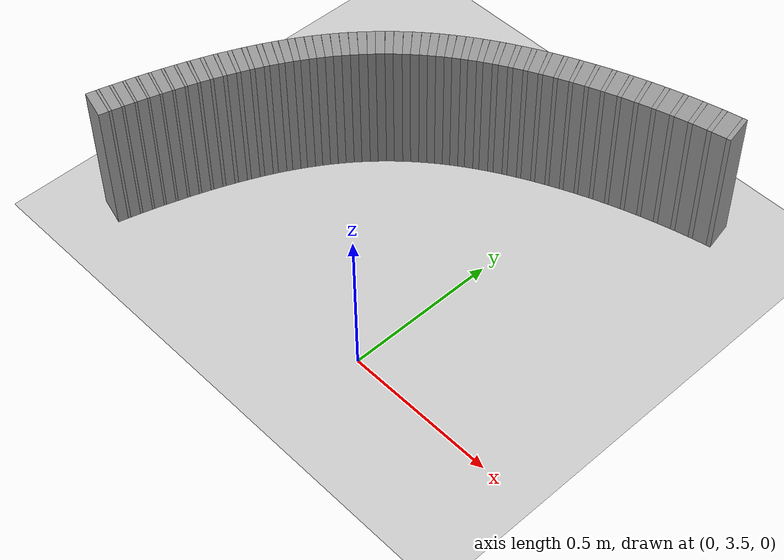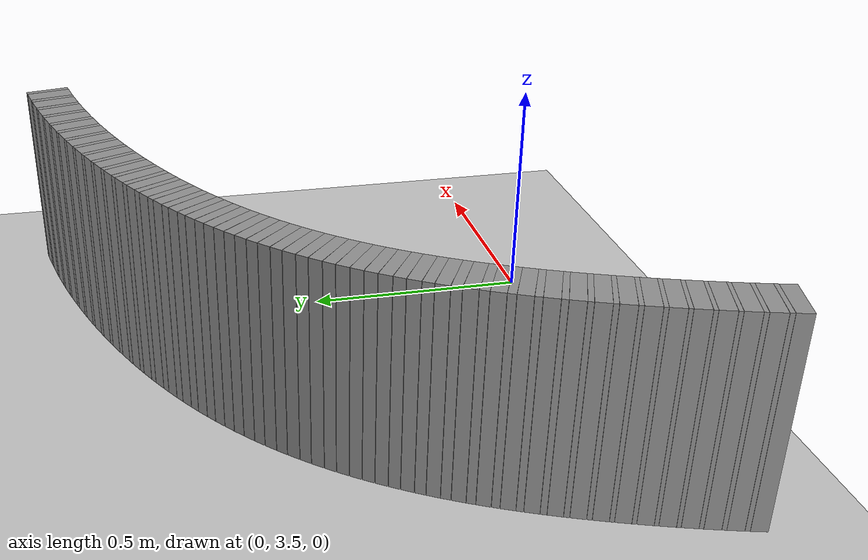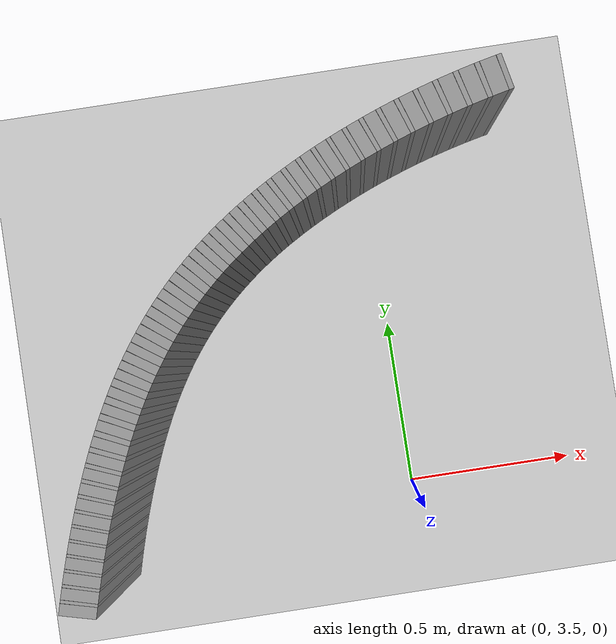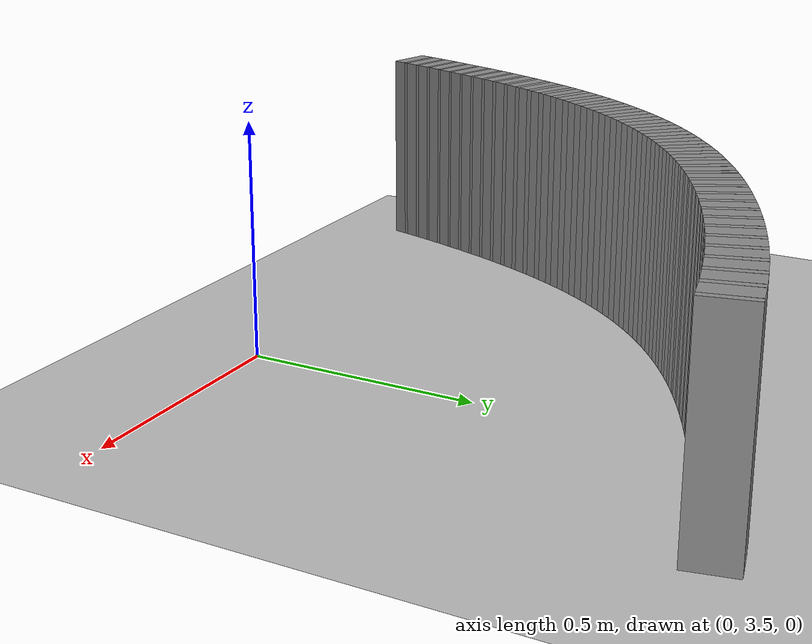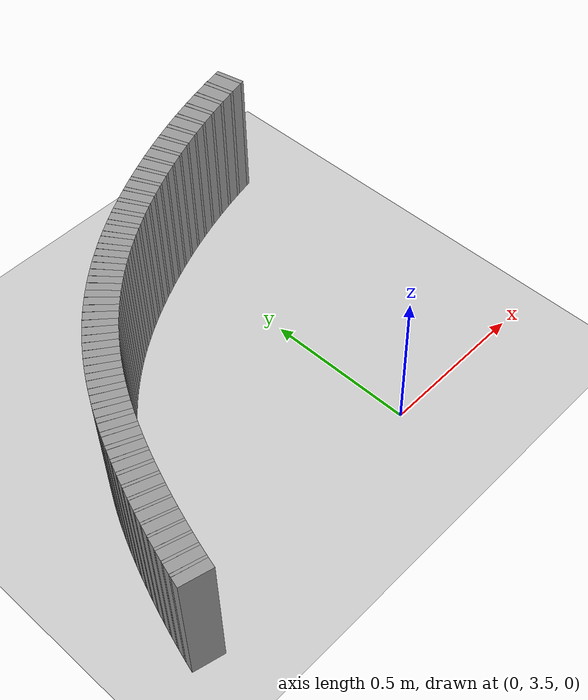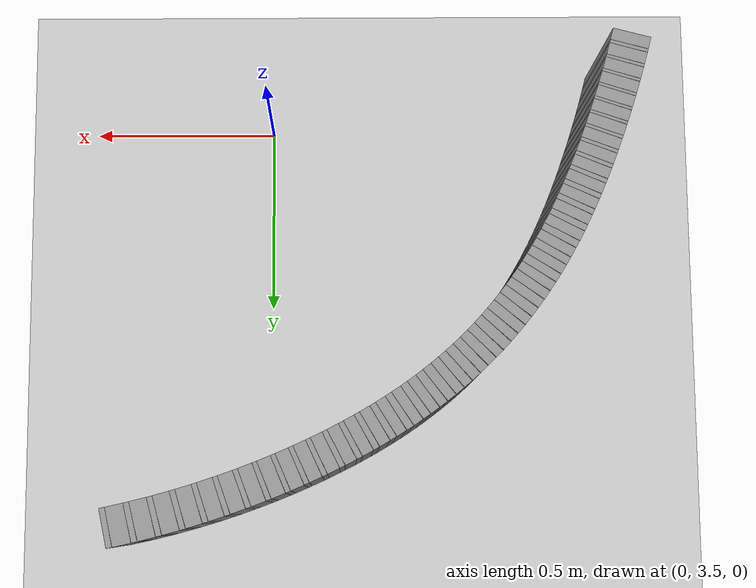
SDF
<sdf version="1.6">
 <world name="default">
  <include><uri>model://ground_plane</uri></include>
  <include><uri>model://sun</uri></include>
  <model name="wall_1367_inward">
   <static>true</static>
   <link name="link">
    <collision name="collision">
     <geometry><box><size>0.014849127280319592 0.1 0.45</size></box></geometry>
    </collision>
    <visual name="visual">
     <geometry><box><size>0.014849127280319592 0.1 0.45</size></box></geometry>
     <material>
      <script><uri>file://media/materials/scripts/gazebo.material</uri><name>Gazebo/Gray</name></script>
     </material>
    </visual>
   </link>
   <pose>0.392468983889634 4.601154664586623 0.225 0 0 -2.938756804813133</pose>
  </model>
  <model name="wall_1368_inward">
   <static>true</static>
   <link name="link">
    <collision name="collision">
     <geometry><box><size>0.04696626317127986 0.1 0.45</size></box></geometry>
    </collision>
    <visual name="visual">
     <geometry><box><size>0.04696626317127986 0.1 0.45</size></box></geometry>
     <material>
      <script><uri>file://media/materials/scripts/gazebo.material</uri><name>Gazebo/Gray</name></script>
     </material>
    </visual>
   </link>
   <pose>0.3622552190268384 4.5946441086404874 0.225 0 0 -2.926382216260908</pose>
  </model>
  <model name="wall_1369_inward">
   <static>true</static>
   <link name="link">
    <collision name="collision">
     <geometry><box><size>0.015055841337964485 0.1 0.45</size></box></geometry>
    </collision>
    <visual name="visual">
     <geometry><box><size>0.015055841337964485 0.1 0.45</size></box></geometry>
     <material>
      <script><uri>file://media/materials/scripts/gazebo.material</uri><name>Gazebo/Gray</name></script>
     </material>
    </visual>
   </link>
   <pose>0.3319802947623629 4.587929460932624 0.225 0 0 -2.9138353526194005</pose>
  </model>
  <model name="wall_1370_inward">
   <static>true</static>
   <link name="link">
    <collision name="collision">
     <geometry><box><size>0.04544403036982154 0.1 0.45</size></box></geometry>
    </collision>
    <visual name="visual">
     <geometry><box><size>0.04544403036982154 0.1 0.45</size></box></geometry>
     <material>
      <script><uri>file://media/materials/scripts/gazebo.material</uri><name>Gazebo/Gray</name></script>
     </material>
    </visual>
   </link>
   <pose>0.30257766853115414 4.580821911216917 0.225 0 0 -2.901288488977895</pose>
  </model>
  <model name="wall_1371_inward">
   <static>true</static>
   <link name="link">
    <collision name="collision">
     <geometry><box><size>0.01501787350965497 0.1 0.45</size></box></geometry>
    </collision>
    <visual name="visual">
     <geometry><box><size>0.01501787350965497 0.1 0.45</size></box></geometry>
     <material>
      <script><uri>file://media/materials/scripts/gazebo.material</uri><name>Gazebo/Gray</name></script>
     </material>
    </visual>
   </link>
   <pose>0.27323832065764364 4.573535869916348 0.225 0 0 -2.8887732676776032</pose>
  </model>
  <model name="wall_1372_inward">
   <static>true</static>
   <link name="link">
    <collision name="collision">
     <geometry><box><size>0.04398114981431672 0.1 0.45</size></box></geometry>
    </collision>
    <visual name="visual">
     <geometry><box><size>0.04398114981431672 0.1 0.45</size></box></geometry>
     <material>
      <script><uri>file://media/materials/scripts/gazebo.material</uri><name>Gazebo/Gray</name></script>
     </material>
    </visual>
   </link>
   <pose>0.2447470745964131 4.565890987790002 0.225 0 0 -2.8762580463773526</pose>
  </model>
  <model name="wall_1373_inward">
   <static>true</static>
   <link name="link">
    <collision name="collision">
     <geometry><box><size>0.0147920358748054 0.1 0.45</size></box></geometry>
    </collision>
    <visual name="visual">
     <geometry><box><size>0.0147920358748054 0.1 0.45</size></box></geometry>
     <material>
      <script><uri>file://media/materials/scripts/gazebo.material</uri><name>Gazebo/Gray</name></script>
     </material>
    </visual>
   </link>
   <pose>0.2164133207142983 4.5580970468177 0.225 0 0 -2.863931037625328</pose>
  </model>
  <model name="wall_1374_inward">
   <static>true</static>
   <link name="link">
    <collision name="collision">
     <geometry><box><size>0.04256624670841422 0.1 0.45</size></box></geometry>
    </collision>
    <visual name="visual">
     <geometry><box><size>0.04256624670841422 0.1 0.45</size></box></geometry>
     <material>
      <script><uri>file://media/materials/scripts/gazebo.material</uri><name>Gazebo/Gray</name></script>
     </material>
    </visual>
   </link>
   <pose>0.1889060855609165 4.549984017763814 0.225 0 0 -2.8516040288732776</pose>
  </model>
  <model name="wall_1375_inward">
   <static>true</static>
   <link name="link">
    <collision name="collision">
     <geometry><box><size>0.014433884393890511 0.1 0.45</size></box></geometry>
    </collision>
    <visual name="visual">
     <geometry><box><size>0.014433884393890511 0.1 0.45</size></box></geometry>
     <material>
      <script><uri>file://media/materials/scripts/gazebo.material</uri><name>Gazebo/Gray</name></script>
     </material>
    </visual>
   </link>
   <pose>0.16162130161494231 4.541751637903971 0.225 0 0 -2.8395755018216664</pose>
  </model>
  <model name="wall_1376_inward">
   <static>true</static>
   <link name="link">
    <collision name="collision">
     <geometry><box><size>0.04118636341307001 0.1 0.45</size></box></geometry>
    </collision>
    <visual name="visual">
     <geometry><box><size>0.04118636341307001 0.1 0.45</size></box></geometry>
     <material>
      <script><uri>file://media/materials/scripts/gazebo.material</uri><name>Gazebo/Gray</name></script>
     </material>
    </visual>
   </link>
   <pose>0.13514500715197592 4.5332435640813245 0.225 0 0 -2.827546974769998</pose>
  </model>
  <model name="wall_1377_inward">
   <static>true</static>
   <link name="link">
    <collision name="collision">
     <geometry><box><size>0.014020607673875784 0.1 0.45</size></box></geometry>
    </collision>
    <visual name="visual">
     <geometry><box><size>0.014020607673875784 0.1 0.45</size></box></geometry>
     <material>
      <script><uri>file://media/materials/scripts/gazebo.material</uri><name>Gazebo/Gray</name></script>
     </material>
    </visual>
   </link>
   <pose>0.10891732063338422 4.524638846429866 0.225 0 0 -2.815862869194462</pose>
  </model>
  <model name="wall_1378_inward">
   <static>true</static>
   <link name="link">
    <collision name="collision">
     <geometry><box><size>0.039829451731680746 0.1 0.45</size></box></geometry>
    </collision>
    <visual name="visual">
     <geometry><box><size>0.039829451731680746 0.1 0.45</size></box></geometry>
     <material>
      <script><uri>file://media/materials/scripts/gazebo.material</uri><name>Gazebo/Gray</name></script>
     </material>
    </visual>
   </link>
   <pose>0.08348382340160487 4.515802818805122 0.225 0 0 -2.804178763619012</pose>
  </model>
  <model name="wall_1379_inward">
   <static>true</static>
   <link name="link">
    <collision name="collision">
     <geometry><box><size>0.013619578464731165 0.1 0.45</size></box></geometry>
    </collision>
    <visual name="visual">
     <geometry><box><size>0.013619578464731165 0.1 0.45</size></box></geometry>
     <material>
      <script><uri>file://media/materials/scripts/gazebo.material</uri><name>Gazebo/Gray</name></script>
     </material>
    </visual>
   </link>
   <pose>0.058292198396370135 4.506882938364542 0.225 0 0 -2.7928288712176603</pose>
  </model>
  <model name="wall_1380_inward">
   <static>true</static>
   <link name="link">
    <collision name="collision">
     <geometry><box><size>0.03848461791273019 0.1 0.45</size></box></geometry>
    </collision>
    <visual name="visual">
     <geometry><box><size>0.03848461791273019 0.1 0.45</size></box></geometry>
     <material>
      <script><uri>file://media/materials/scripts/gazebo.material</uri><name>Gazebo/Gray</name></script>
     </material>
    </visual>
   </link>
   <pose>0.03388434129165502 4.49777516960933 0.225 0 0 -2.7814789788163354</pose>
  </model>
  <model name="wall_1381_inward">
   <static>true</static>
   <link name="link">
    <collision name="collision">
     <geometry><box><size>0.013309610051335541 0.1 0.45</size></box></geometry>
    </collision>
    <visual name="visual">
     <geometry><box><size>0.013309610051335541 0.1 0.45</size></box></geometry>
     <material>
      <script><uri>file://media/materials/scripts/gazebo.material</uri><name>Gazebo/Gray</name></script>
     </material>
    </visual>
   </link>
   <pose>0.00967474432398821 4.488580596543073 0.225 0 0 -2.770387409688741</pose>
  </model>
  <model name="wall_1382_inward">
   <static>true</static>
   <link name="link">
    <collision name="collision">
     <geometry><box><size>0.03714724470620901 0.1 0.45</size></box></geometry>
    </collision>
    <visual name="visual">
     <geometry><box><size>0.03714724470620901 0.1 0.45</size></box></geometry>
     <material>
      <script><uri>file://media/materials/scripts/gazebo.material</uri><name>Gazebo/Gray</name></script>
     </material>
    </visual>
   </link>
   <pose>-0.01375960471300372 4.4792377047385346 0.225 0 0 -2.759295840561209</pose>
  </model>
  <model name="wall_1383_inward">
   <static>true</static>
   <link name="link">
    <collision name="collision">
     <geometry><box><size>0.01317840313160197 0.1 0.45</size></box></geometry>
    </collision>
    <visual name="visual">
     <geometry><box><size>0.01317840313160197 0.1 0.45</size></box></geometry>
     <material>
      <script><uri>file://media/materials/scripts/gazebo.material</uri><name>Gazebo/Gray</name></script>
     </material>
    </visual>
   </link>
   <pose>-0.03707856698347316 4.469783660865735 0.225 0 0 -2.7483136171932765</pose>
  </model>
  <model name="wall_1384_inward">
   <static>true</static>
   <link name="link">
    <collision name="collision">
     <geometry><box><size>0.035815632536632634 0.1 0.45</size></box></geometry>
    </collision>
    <visual name="visual">
     <geometry><box><size>0.035815632536632634 0.1 0.45</size></box></geometry>
     <material>
      <script><uri>file://media/materials/scripts/gazebo.material</uri><name>Gazebo/Gray</name></script>
     </material>
    </visual>
   </link>
   <pose>-0.059629056952012705 4.460214697838661 0.225 0 0 -2.7373313938253667</pose>
  </model>
  <model name="wall_1385_inward">
   <static>true</static>
   <link name="link">
    <collision name="collision">
     <geometry><box><size>0.013257525321962891 0.1 0.45</size></box></geometry>
    </collision>
    <visual name="visual">
     <geometry><box><size>0.013257525321962891 0.1 0.45</size></box></geometry>
     <material>
      <script><uri>file://media/materials/scripts/gazebo.material</uri><name>Gazebo/Gray</name></script>
     </material>
    </visual>
   </link>
   <pose>-0.08215864351095478 4.450496315996821 0.225 0 0 -2.726283231298527</pose>
  </model>
  <model name="wall_1386_inward">
   <static>true</static>
   <link name="link">
    <collision name="collision">
     <geometry><box><size>0.03449523122068988 0.1 0.45</size></box></geometry>
    </collision>
    <visual name="visual">
     <geometry><box><size>0.03449523122068988 0.1 0.45</size></box></geometry>
     <material>
      <script><uri>file://media/materials/scripts/gazebo.material</uri><name>Gazebo/Gray</name></script>
     </material>
    </visual>
   </link>
   <pose>-0.10392748200099083 4.440688912930112 0.225 0 0 -2.715235068771608</pose>
  </model>
  <model name="wall_1387_inward">
   <static>true</static>
   <link name="link">
    <collision name="collision">
     <geometry><box><size>0.013624634827327205 0.1 0.45</size></box></geometry>
    </collision>
    <visual name="visual">
     <geometry><box><size>0.013624634827327205 0.1 0.45</size></box></geometry>
     <material>
      <script><uri>file://media/materials/scripts/gazebo.material</uri><name>Gazebo/Gray</name></script>
     </material>
    </visual>
   </link>
   <pose>-0.12580113806757026 4.4306685137139645 0.225 0 0 -2.703880962463254</pose>
  </model>
  <model name="wall_1388_inward">
   <static>true</static>
   <link name="link">
    <collision name="collision">
     <geometry><box><size>0.03319510672204386 0.1 0.45</size></box></geometry>
    </collision>
    <visual name="visual">
     <geometry><box><size>0.03319510672204386 0.1 0.45</size></box></geometry>
     <material>
      <script><uri>file://media/materials/scripts/gazebo.material</uri><name>Gazebo/Gray</name></script>
     </material>
    </visual>
   </link>
   <pose>-0.14692317392743365 4.420575591700965 0.225 0 0 -2.6925268561549296</pose>
  </model>
  <model name="wall_1389_inward">
   <static>true</static>
   <link name="link">
    <collision name="collision">
     <geometry><box><size>0.014297633485500316 0.1 0.45</size></box></geometry>
    </collision>
    <visual name="visual">
     <geometry><box><size>0.014297633485500316 0.1 0.45</size></box></geometry>
     <material>
      <script><uri>file://media/materials/scripts/gazebo.material</uri><name>Gazebo/Gray</name></script>
     </material>
    </visual>
   </link>
   <pose>-0.16827772991348852 4.410190208357477 0.225 0 0 -2.6806118796641</pose>
  </model>
  <model name="wall_1390_inward">
   <static>true</static>
   <link name="link">
    <collision name="collision">
     <geometry><box><size>0.031930395407160694 0.1 0.45</size></box></geometry>
    </collision>
    <visual name="visual">
     <geometry><box><size>0.031930395407160694 0.1 0.45</size></box></geometry>
     <material>
      <script><uri>file://media/materials/scripts/gazebo.material</uri><name>Gazebo/Gray</name></script>
     </material>
    </visual>
   </link>
   <pose>-0.18889339609256117 4.399738616658993 0.225 0 0 -2.6686969031732617</pose>
  </model>
  <model name="wall_1391_inward">
   <static>true</static>
   <link name="link">
    <collision name="collision">
     <geometry><box><size>0.015294783452719963 0.1 0.45</size></box></geometry>
    </collision>
    <visual name="visual">
     <geometry><box><size>0.015294783452719963 0.1 0.45</size></box></geometry>
     <material>
      <script><uri>file://media/materials/scripts/gazebo.material</uri><name>Gazebo/Gray</name></script>
     </material>
    </visual>
   </link>
   <pose>-0.2098696294230044 4.388897390714499 0.225 0 0 -2.655950905178627</pose>
  </model>
  <model name="wall_1392_inward">
   <static>true</static>
   <link name="link">
    <collision name="collision">
     <geometry><box><size>0.03071918702018818 0.1 0.45</size></box></geometry>
    </collision>
    <visual name="visual">
     <geometry><box><size>0.03071918702018818 0.1 0.45</size></box></geometry>
     <material>
      <script><uri>file://media/materials/scripts/gazebo.material</uri><name>Gazebo/Gray</name></script>
     </material>
    </visual>
   </link>
   <pose>-0.23012396208614228 4.377985732015707 0.225 0 0 -2.643204907184095</pose>
  </model>
  <model name="wall_1393_inward">
   <static>true</static>
   <link name="link">
    <collision name="collision">
     <geometry><box><size>0.016628277594501865 0.1 0.45</size></box></geometry>
    </collision>
    <visual name="visual">
     <geometry><box><size>0.016628277594501865 0.1 0.45</size></box></geometry>
     <material>
      <script><uri>file://media/materials/scripts/gazebo.material</uri><name>Gazebo/Gray</name></script>
     </material>
    </visual>
   </link>
   <pose>-0.25086211665623565 4.366568638483381 0.225 0 0 -2.629347565698137</pose>
  </model>
  <model name="wall_1394_inward">
   <static>true</static>
   <link name="link">
    <collision name="collision">
     <geometry><box><size>0.029579879459732138 0.1 0.45</size></box></geometry>
    </collision>
    <visual name="visual">
     <geometry><box><size>0.029579879459732138 0.1 0.45</size></box></geometry>
     <material>
      <script><uri>file://media/materials/scripts/gazebo.material</uri><name>Gazebo/Gray</name></script>
     </material>
    </visual>
   </link>
   <pose>-0.27089901400315813 4.355066570100257 0.225 0 0 -2.6154902242122255</pose>
  </model>
  <model name="wall_1395_inward">
   <static>true</static>
   <link name="link">
    <collision name="collision">
     <geometry><box><size>0.01824035968282119 0.1 0.45</size></box></geometry>
    </collision>
    <visual name="visual">
     <geometry><box><size>0.01824035968282119 0.1 0.45</size></box></geometry>
     <material>
      <script><uri>file://media/materials/scripts/gazebo.material</uri><name>Gazebo/Gray</name></script>
     </material>
    </visual>
   </link>
   <pose>-0.29150526248652797 4.342940351643824 0.225 0 0 -2.6002893390796804</pose>
  </model>
  <model name="wall_1396_inward">
   <static>true</static>
   <link name="link">
    <collision name="collision">
     <geometry><box><size>0.02853377288058711 0.1 0.45</size></box></geometry>
    </collision>
    <visual name="visual">
     <geometry><box><size>0.02853377288058711 0.1 0.45</size></box></geometry>
     <material>
      <script><uri>file://media/materials/scripts/gazebo.material</uri><name>Gazebo/Gray</name></script>
     </material>
    </visual>
   </link>
   <pose>-0.3114357130327825 4.330705077015381 0.225 0 0 -2.5850884539471903</pose>
  </model>
  <model name="wall_1397_inward">
   <static>true</static>
   <link name="link">
    <collision name="collision">
     <geometry><box><size>0.020056211708876726 0.1 0.45</size></box></geometry>
    </collision>
    <visual name="visual">
     <geometry><box><size>0.020056211708876726 0.1 0.45</size></box></geometry>
     <material>
      <script><uri>file://media/materials/scripts/gazebo.material</uri><name>Gazebo/Gray</name></script>
     </material>
    </visual>
   </link>
   <pose>-0.3319750356494042 4.317730374362628 0.225 0 0 -2.568374165962764</pose>
  </model>
  <model name="wall_1398_inward">
   <static>true</static>
   <link name="link">
    <collision name="collision">
     <geometry><box><size>0.02760075356349479 0.1 0.45</size></box></geometry>
    </collision>
    <visual name="visual">
     <geometry><box><size>0.02760075356349479 0.1 0.45</size></box></geometry>
     <material>
      <script><uri>file://media/materials/scripts/gazebo.material</uri><name>Gazebo/Gray</name></script>
     </material>
    </visual>
   </link>
   <pose>-0.35186805782230696 4.304614521650894 0.225 0 0 -2.5516598779782718</pose>
  </model>
  <model name="wall_1399_inward">
   <static>true</static>
   <link name="link">
    <collision name="collision">
     <geometry><box><size>0.02200440622180352 0.1 0.45</size></box></geometry>
    </collision>
    <visual name="visual">
     <geometry><box><size>0.02200440622180352 0.1 0.45</size></box></geometry>
     <material>
      <script><uri>file://media/materials/scripts/gazebo.material</uri><name>Gazebo/Gray</name></script>
     </material>
    </visual>
   </link>
   <pose>-0.3723646876385298 4.2906500998049095 0.225 0 0 -2.5333218450145503</pose>
  </model>
  <model name="wall_1400_inward">
   <static>true</static>
   <link name="link">
    <collision name="collision">
     <geometry><box><size>0.026799977084534143 0.1 0.45</size></box></geometry>
    </collision>
    <visual name="visual">
     <geometry><box><size>0.026799977084534143 0.1 0.45</size></box></geometry>
     <material>
      <script><uri>file://media/materials/scripts/gazebo.material</uri><name>Gazebo/Gray</name></script>
     </material>
    </visual>
   </link>
   <pose>-0.39224777553364143 4.276505129088914 0.225 0 0 -2.5149838120508257</pose>
  </model>
  <model name="wall_1401_inward">
   <static>true</static>
   <link name="link">
    <collision name="collision">
     <geometry><box><size>0.023881369716501896 0.1 0.45</size></box></geometry>
    </collision>
    <visual name="visual">
     <geometry><box><size>0.023881369716501896 0.1 0.45</size></box></geometry>
     <material>
      <script><uri>file://media/materials/scripts/gazebo.material</uri><name>Gazebo/Gray</name></script>
     </material>
    </visual>
   </link>
   <pose>-0.4126329826057964 4.2614542259972 0.225 0 0 -2.4950813567270544</pose>
  </model>
  <model name="wall_1402_inward">
   <static>true</static>
   <link name="link">
    <collision name="collision">
     <geometry><box><size>0.026146189037495444 0.1 0.45</size></box></geometry>
    </collision>
    <visual name="visual">
     <geometry><box><size>0.026146189037495444 0.1 0.45</size></box></geometry>
     <material>
      <script><uri>file://media/materials/scripts/gazebo.material</uri><name>Gazebo/Gray</name></script>
     </material>
    </visual>
   </link>
   <pose>-0.43243994369681293 4.2461796844325335 0.225 0 0 -2.475178901403248</pose>
  </model>
  <model name="wall_1403_inward">
   <static>true</static>
   <link name="link">
    <collision name="collision">
     <geometry><box><size>0.02556972416572605 0.1 0.45</size></box></geometry>
    </collision>
    <visual name="visual">
     <geometry><box><size>0.02556972416572605 0.1 0.45</size></box></geometry>
     <material>
      <script><uri>file://media/materials/scripts/gazebo.material</uri><name>Gazebo/Gray</name></script>
     </material>
    </visual>
   </link>
   <pose>-0.4525947412438159 4.229982704454207 0.225 0 0 -2.4538691851638395</pose>
  </model>
  <model name="wall_1404_inward">
   <static>true</static>
   <link name="link">
    <collision name="collision">
     <geometry><box><size>0.02565073848480738 0.1 0.45</size></box></geometry>
    </collision>
    <visual name="visual">
     <geometry><box><size>0.02565073848480738 0.1 0.45</size></box></geometry>
     <material>
      <script><uri>file://media/materials/scripts/gazebo.material</uri><name>Gazebo/Gray</name></script>
     </material>
    </visual>
   </link>
   <pose>-0.4722078652324741 4.213516531278239 0.225 0 0 -2.432559468924425</pose>
  </model>
  <model name="wall_1405_inward">
   <static>true</static>
   <link name="link">
    <collision name="collision">
     <geometry><box><size>0.0269062728329867 0.1 0.45</size></box></geometry>
    </collision>
    <visual name="visual">
     <geometry><box><size>0.0269062728329867 0.1 0.45</size></box></geometry>
     <material>
      <script><uri>file://media/materials/scripts/gazebo.material</uri><name>Gazebo/Gray</name></script>
     </material>
    </visual>
   </link>
   <pose>-0.491954065522339 4.196179845344712 0.225 0 0 -2.41013569573632</pose>
  </model>
  <model name="wall_1406_inward">
   <static>true</static>
   <link name="link">
    <collision name="collision">
     <geometry><box><size>0.02531991710122111 0.1 0.45</size></box></geometry>
    </collision>
    <visual name="visual">
     <geometry><box><size>0.02531991710122111 0.1 0.45</size></box></geometry>
     <material>
      <script><uri>file://media/materials/scripts/gazebo.material</uri><name>Gazebo/Gray</name></script>
     </material>
    </visual>
   </link>
   <pose>-0.5111955089395952 4.178528359621147 0.225 0 0 -2.3877119225481698</pose>
  </model>
  <model name="wall_1407_inward">
   <static>true</static>
   <link name="link">
    <collision name="collision">
     <geometry><box><size>0.02772704098543394 0.1 0.45</size></box></geometry>
    </collision>
    <visual name="visual">
     <geometry><box><size>0.02772704098543394 0.1 0.45</size></box></geometry>
     <material>
      <script><uri>file://media/materials/scripts/gazebo.material</uri><name>Gazebo/Gray</name></script>
     </material>
    </visual>
   </link>
   <pose>-0.5303101812540496 4.160142753075874 0.225 0 0 -2.3646039986018623</pose>
  </model>
  <model name="wall_1408_inward">
   <static>true</static>
   <link name="link">
    <collision name="collision">
     <geometry><box><size>0.02515378973367862 0.1 0.45</size></box></geometry>
    </collision>
    <visual name="visual">
     <geometry><box><size>0.02515378973367862 0.1 0.45</size></box></geometry>
     <material>
      <script><uri>file://media/materials/scripts/gazebo.material</uri><name>Gazebo/Gray</name></script>
     </material>
    </visual>
   </link>
   <pose>-0.5489567969740969 4.141399589345729 0.225 0 0 -2.341496074655522</pose>
  </model>
  <model name="wall_1409_inward">
   <static>true</static>
   <link name="link">
    <collision name="collision">
     <geometry><box><size>0.027944257810436218 0.1 0.45</size></box></geometry>
    </collision>
    <visual name="visual">
     <geometry><box><size>0.027944257810436218 0.1 0.45</size></box></geometry>
     <material>
      <script><uri>file://media/materials/scripts/gazebo.material</uri><name>Gazebo/Gray</name></script>
     </material>
    </visual>
   </link>
   <pose>-0.5672157749112414 4.122128754321615 0.225 0 0 -2.318207087969181</pose>
  </model>
  <model name="wall_1410_inward">
   <static>true</static>
   <link name="link">
    <collision name="collision">
     <geometry><box><size>0.02514727435788805 0.1 0.45</size></box></geometry>
    </collision>
    <visual name="visual">
     <geometry><box><size>0.02514727435788805 0.1 0.45</size></box></geometry>
     <material>
      <script><uri>file://media/materials/scripts/gazebo.material</uri><name>Gazebo/Gray</name></script>
     </material>
    </visual>
   </link>
   <pose>-0.5850429731442823 4.102462198460776 0.225 0 0 -2.2949181012828253</pose>
  </model>
  <model name="wall_1411_inward">
   <static>true</static>
   <link name="link">
    <collision name="collision">
     <geometry><box><size>0.02758879870359209 0.1 0.45</size></box></geometry>
    </collision>
    <visual name="visual">
     <geometry><box><size>0.02758879870359209 0.1 0.45</size></box></geometry>
     <material>
      <script><uri>file://media/materials/scripts/gazebo.material</uri><name>Gazebo/Gray</name></script>
     </material>
    </visual>
   </link>
   <pose>-0.6022712319044101 4.082503021120299 0.225 0 0 -2.271925409849231</pose>
  </model>
  <model name="wall_1412_inward">
   <static>true</static>
   <link name="link">
    <collision name="collision">
     <geometry><box><size>0.025286617313076503 0.1 0.45</size></box></geometry>
    </collision>
    <visual name="visual">
     <geometry><box><size>0.025286617313076503 0.1 0.45</size></box></geometry>
     <material>
      <script><uri>file://media/materials/scripts/gazebo.material</uri><name>Gazebo/Gray</name></script>
     </material>
    </visual>
   </link>
   <pose>-0.6191014239027752 4.062116632438233 0.225 0 0 -2.248932718415619</pose>
  </model>
  <model name="wall_1413_inward">
   <static>true</static>
   <link name="link">
    <collision name="collision">
     <geometry><box><size>0.02664323136642909 0.1 0.45</size></box></geometry>
    </collision>
    <visual name="visual">
     <geometry><box><size>0.02664323136642909 0.1 0.45</size></box></geometry>
     <material>
      <script><uri>file://media/materials/scripts/gazebo.material</uri><name>Gazebo/Gray</name></script>
     </material>
    </visual>
   </link>
   <pose>-0.6351579398440242 4.0417136289160025 0.225 0 0 -2.22672820103384</pose>
  </model>
  <model name="wall_1414_inward">
   <static>true</static>
   <link name="link">
    <collision name="collision">
     <geometry><box><size>0.025555321199773193 0.1 0.45</size></box></geometry>
    </collision>
    <visual name="visual">
     <geometry><box><size>0.025555321199773193 0.1 0.45</size></box></geometry>
     <material>
      <script><uri>file://media/materials/scripts/gazebo.material</uri><name>Gazebo/Gray</name></script>
     </material>
    </visual>
   </link>
   <pose>-0.6508490898264516 4.020859945470125 0.225 0 0 -2.204523683652068</pose>
  </model>
  <model name="wall_1415_inward">
   <static>true</static>
   <link name="link">
    <collision name="collision">
     <geometry><box><size>0.02524640448478993 0.1 0.45</size></box></geometry>
    </collision>
    <visual name="visual">
     <geometry><box><size>0.02524640448478993 0.1 0.45</size></box></geometry>
     <material>
      <script><uri>file://media/materials/scripts/gazebo.material</uri><name>Gazebo/Gray</name></script>
     </material>
    </visual>
   </link>
   <pose>-0.665674611372169 4.000236261443597 0.225 0 0 -2.1834834608963214</pose>
  </model>
  <model name="wall_1416_inward">
   <static>true</static>
   <link name="link">
    <collision name="collision">
     <geometry><box><size>0.02592999163623841 0.1 0.45</size></box></geometry>
    </collision>
    <visual name="visual">
     <geometry><box><size>0.02592999163623841 0.1 0.45</size></box></geometry>
     <material>
      <script><uri>file://media/materials/scripts/gazebo.material</uri><name>Gazebo/Gray</name></script>
     </material>
    </visual>
   </link>
   <pose>-0.6801647606485717 3.97914789958441 0.225 0 0 -2.1624432381405727</pose>
  </model>
  <model name="wall_1417_inward">
   <static>true</static>
   <link name="link">
    <collision name="collision">
     <geometry><box><size>0.023487234497805376 0.1 0.45</size></box></geometry>
    </collision>
    <visual name="visual">
     <geometry><box><size>0.023487234497805376 0.1 0.45</size></box></geometry>
     <material>
      <script><uri>file://media/materials/scripts/gazebo.material</uri><name>Gazebo/Gray</name></script>
     </material>
    </visual>
   </link>
   <pose>-0.6937534255470237 3.9585128465776203 0.225 0 0 -2.1428692928249458</pose>
  </model>
  <model name="wall_1418_inward">
   <static>true</static>
   <link name="link">
    <collision name="collision">
     <geometry><box><size>0.0263857362769666 0.1 0.45</size></box></geometry>
    </collision>
    <visual name="visual">
     <geometry><box><size>0.0263857362769666 0.1 0.45</size></box></geometry>
     <material>
      <script><uri>file://media/materials/scripts/gazebo.material</uri><name>Gazebo/Gray</name></script>
     </material>
    </visual>
   </link>
   <pose>-0.707034968711971 3.937409065968756 0.225 0 0 -2.123295347509318</pose>
  </model>
  <model name="wall_1419_inward">
   <static>true</static>
   <link name="link">
    <collision name="collision">
     <geometry><box><size>0.02153578666945619 0.1 0.45</size></box></geometry>
    </collision>
    <visual name="visual">
     <geometry><box><size>0.02153578666945619 0.1 0.45</size></box></geometry>
     <material>
      <script><uri>file://media/materials/scripts/gazebo.material</uri><name>Gazebo/Gray</name></script>
     </material>
    </visual>
   </link>
   <pose>-0.7194445573639663 3.9169133483138023 0.225 0 0 -2.105347895121513</pose>
  </model>
  <model name="wall_1420_inward">
   <static>true</static>
   <link name="link">
    <collision name="collision">
     <geometry><box><size>0.026895277802992536 0.1 0.45</size></box></geometry>
    </collision>
    <visual name="visual">
     <geometry><box><size>0.026895277802992536 0.1 0.45</size></box></geometry>
     <material>
      <script><uri>file://media/materials/scripts/gazebo.material</uri><name>Gazebo/Gray</name></script>
     </material>
    </visual>
   </link>
   <pose>-0.7315725126423858 3.895954864090519 0.225 0 0 -2.0874004427336983</pose>
  </model>
  <model name="wall_1421_inward">
   <static>true</static>
   <link name="link">
    <collision name="collision">
     <geometry><box><size>0.019477972124147834 0.1 0.45</size></box></geometry>
    </collision>
    <visual name="visual">
     <geometry><box><size>0.019477972124147834 0.1 0.45</size></box></geometry>
     <material>
      <script><uri>file://media/materials/scripts/gazebo.material</uri><name>Gazebo/Gray</name></script>
     </material>
    </visual>
   </link>
   <pose>-0.7428870041487745 3.8757170936682996 0.225 0 0 -2.0711680864640285</pose>
  </model>
  <model name="wall_1422_inward">
   <static>true</static>
   <link name="link">
    <collision name="collision">
     <geometry><box><size>0.027432757730184634 0.1 0.45</size></box></geometry>
    </collision>
    <visual name="visual">
     <geometry><box><size>0.027432757730184634 0.1 0.45</size></box></geometry>
     <material>
      <script><uri>file://media/materials/scripts/gazebo.material</uri><name>Gazebo/Gray</name></script>
     </material>
    </visual>
   </link>
   <pose>-0.7539435449870288 3.8550320301812286 0.225 0 0 -2.0549357301943547</pose>
  </model>
  <model name="wall_1423_inward">
   <static>true</static>
   <link name="link">
    <collision name="collision">
     <geometry><box><size>0.017427872782017725 0.1 0.45</size></box></geometry>
    </collision>
    <visual name="visual">
     <geometry><box><size>0.017427872782017725 0.1 0.45</size></box></geometry>
     <material>
      <script><uri>file://media/materials/scripts/gazebo.material</uri><name>Gazebo/Gray</name></script>
     </material>
    </visual>
   </link>
   <pose>-0.7642712262376928 3.835121409128119 0.225 0 0 -2.0404119922776864</pose>
  </model>
  <model name="wall_1424_inward">
   <static>true</static>
   <link name="link">
    <collision name="collision">
     <geometry><box><size>0.0279728174506665 0.1 0.45</size></box></geometry>
    </collision>
    <visual name="visual">
     <geometry><box><size>0.0279728174506665 0.1 0.45</size></box></geometry>
     <material>
      <script><uri>file://media/materials/scripts/gazebo.material</uri><name>Gazebo/Gray</name></script>
     </material>
    </visual>
   </link>
   <pose>-0.7743623167492312 3.814787942807758 0.225 0 0 -2.02588825436102</pose>
  </model>
  <model name="wall_1425_inward">
   <static>true</static>
   <link name="link">
    <collision name="collision">
     <geometry><box><size>0.015490441337026442 0.1 0.45</size></box></geometry>
    </collision>
    <visual name="visual">
     <geometry><box><size>0.015490441337026442 0.1 0.45</size></box></geometry>
     <material>
      <script><uri>file://media/materials/scripts/gazebo.material</uri><name>Gazebo/Gray</name></script>
     </material>
    </visual>
   </link>
   <pose>-0.7838242549167797 3.7952247786896125 0.225 0 0 -2.0129791947139783</pose>
  </model>
  <model name="wall_1426_inward">
   <static>true</static>
   <link name="link">
    <collision name="collision">
     <geometry><box><size>0.028496123092211063 0.1 0.45</size></box></geometry>
    </collision>
    <visual name="visual">
     <geometry><box><size>0.028496123092211063 0.1 0.45</size></box></geometry>
     <material>
      <script><uri>file://media/materials/scripts/gazebo.material</uri><name>Gazebo/Gray</name></script>
     </material>
    </visual>
   </link>
   <pose>-0.793068733018476 3.7752691855493716 0.225 0 0 -2.0000701350669448</pose>
  </model>
  <model name="wall_1427_inward">
   <static>true</static>
   <link name="link">
    <collision name="collision">
     <geometry><box><size>0.013677507648223381 0.1 0.45</size></box></geometry>
    </collision>
    <visual name="visual">
     <geometry><box><size>0.013677507648223381 0.1 0.45</size></box></geometry>
     <material>
      <script><uri>file://media/materials/scripts/gazebo.material</uri><name>Gazebo/Gray</name></script>
     </material>
    </visual>
   </link>
   <pose>-0.801774229126113 3.756063575405207 0.225 0 0 -1.9886719652232667</pose>
  </model>
  <model name="wall_1428_inward">
   <static>true</static>
   <link name="link">
    <collision name="collision">
     <geometry><box><size>0.02898443826536213 0.1 0.45</size></box></geometry>
    </collision>
    <visual name="visual">
     <geometry><box><size>0.02898443826536213 0.1 0.45</size></box></geometry>
     <material>
      <script><uri>file://media/materials/scripts/gazebo.material</uri><name>Gazebo/Gray</name></script>
     </material>
    </visual>
   </link>
   <pose>-0.8102794104717033 3.736501892919604 0.225 0 0 -1.9772737953795876</pose>
  </model>
  <model name="wall_1429_inward">
   <static>true</static>
   <link name="link">
    <collision name="collision">
     <geometry><box><size>0.012073459047200315 0.1 0.45</size></box></geometry>
    </collision>
    <visual name="visual">
     <geometry><box><size>0.012073459047200315 0.1 0.45</size></box></geometry>
     <material>
      <script><uri>file://media/materials/scripts/gazebo.material</uri><name>Gazebo/Gray</name></script>
     </material>
    </visual>
   </link>
   <pose>-0.8183401609528165 3.717621925271575 0.225 0 0 -1.9672124097529446</pose>
  </model>
  <model name="wall_1430_inward">
   <static>true</static>
   <link name="link">
    <collision name="collision">
     <geometry><box><size>0.02942665387062578 0.1 0.45</size></box></geometry>
    </collision>
    <visual name="visual">
     <geometry><box><size>0.02942665387062578 0.1 0.45</size></box></geometry>
     <material>
      <script><uri>file://media/materials/scripts/gazebo.material</uri><name>Gazebo/Gray</name></script>
     </material>
    </visual>
   </link>
   <pose>-0.8262152241504008 3.6984245496347885 0.225 0 0 -1.9571510241263188</pose>
  </model>
  <model name="wall_1431_inward">
   <static>true</static>
   <link name="link">
    <collision name="collision">
     <geometry><box><size>0.010677478556304751 0.1 0.45</size></box></geometry>
    </collision>
    <visual name="visual">
     <geometry><box><size>0.010677478556304751 0.1 0.45</size></box></geometry>
     <material>
      <script><uri>file://media/materials/scripts/gazebo.material</uri><name>Gazebo/Gray</name></script>
     </material>
    </visual>
   </link>
   <pose>-0.8337270482518816 3.6798328407591163 0.225 0 0 -1.9482530079135738</pose>
  </model>
  <model name="wall_1432_inward">
   <static>true</static>
   <link name="link">
    <collision name="collision">
     <geometry><box><size>0.029816130854421804 0.1 0.45</size></box></geometry>
    </collision>
    <visual name="visual">
     <geometry><box><size>0.029816130854421804 0.1 0.45</size></box></geometry>
     <material>
      <script><uri>file://media/materials/scripts/gazebo.material</uri><name>Gazebo/Gray</name></script>
     </material>
    </visual>
   </link>
   <pose>-0.8410656275493943 3.6609629691862278 0.225 0 0 -1.9393549917008428</pose>
  </model>
  <model name="wall_1433_inward">
   <static>true</static>
   <link name="link">
    <collision name="collision">
     <geometry><box><size>0.009553439092370396 0.1 0.45</size></box></geometry>
    </collision>
    <visual name="visual">
     <geometry><box><size>0.009553439092370396 0.1 0.45</size></box></geometry>
     <material>
      <script><uri>file://media/materials/scripts/gazebo.material</uri><name>Gazebo/Gray</name></script>
     </material>
    </visual>
   </link>
   <pose>-0.8481219605948108 3.642586505710197 0.225 0 0 -1.9313937083570725</pose>
  </model>
  <model name="wall_1434_inward">
   <static>true</static>
   <link name="link">
    <collision name="collision">
     <geometry><box><size>0.03015145515120611 0.1 0.45</size></box></geometry>
    </collision>
    <visual name="visual">
     <geometry><box><size>0.03015145515120611 0.1 0.45</size></box></geometry>
     <material>
      <script><uri>file://media/materials/scripts/gazebo.material</uri><name>Gazebo/Gray</name></script>
     </material>
    </visual>
   </link>
   <pose>-0.855014093744941 3.623968944293934 0.225 0 0 -1.923432425013315</pose>
  </model>
  <model name="wall_1435_inward">
   <static>true</static>
   <link name="link">
    <collision name="collision">
     <geometry><box><size>0.008699406107564641 0.1 0.45</size></box></geometry>
    </collision>
    <visual name="visual">
     <geometry><box><size>0.008699406107564641 0.1 0.45</size></box></geometry>
     <material>
      <script><uri>file://media/materials/scripts/gazebo.material</uri><name>Gazebo/Gray</name></script>
     </material>
    </visual>
   </link>
   <pose>-0.8616934786053312 3.6057280636499947 0.225 0 0 -1.9161828564221504</pose>
  </model>
  <model name="wall_1436_inward">
   <static>true</static>
   <link name="link">
    <collision name="collision">
     <geometry><box><size>0.03043609989325125 0.1 0.45</size></box></geometry>
    </collision>
    <visual name="visual">
     <geometry><box><size>0.03043609989325125 0.1 0.45</size></box></geometry>
     <material>
      <script><uri>file://media/materials/scripts/gazebo.material</uri><name>Gazebo/Gray</name></script>
     </material>
    </visual>
   </link>
   <pose>-0.8682144014572524 3.587278916142548 0.225 0 0 -1.908933287831009</pose>
  </model>
  <model name="wall_1437_inward">
   <static>true</static>
   <link name="link">
    <collision name="collision">
     <geometry><box><size>0.008139911087231614 0.1 0.45</size></box></geometry>
    </collision>
    <visual name="visual">
     <geometry><box><size>0.008139911087231614 0.1 0.45</size></box></geometry>
     <material>
      <script><uri>file://media/materials/scripts/gazebo.material</uri><name>Gazebo/Gray</name></script>
     </material>
    </visual>
   </link>
   <pose>-0.8745867386150903 3.5690740369879728 0.225 0 0 -1.9021499765713366</pose>
  </model>
  <model name="wall_1438_inward">
   <static>true</static>
   <link name="link">
    <collision name="collision">
     <geometry><box><size>0.0306781273772911 0.1 0.45</size></box></geometry>
    </collision>
    <visual name="visual">
     <geometry><box><size>0.0306781273772911 0.1 0.45</size></box></geometry>
     <material>
      <script><uri>file://media/materials/scripts/gazebo.material</uri><name>Gazebo/Gray</name></script>
     </material>
    </visual>
   </link>
   <pose>-0.8808024419099998 3.5506872975396697 0.225 0 0 -1.8953666653116557</pose>
  </model>
  <model name="wall_1439_inward">
   <static>true</static>
   <link name="link">
    <collision name="collision">
     <geometry><box><size>0.007840057754526938 0.1 0.45</size></box></geometry>
    </collision>
    <visual name="visual">
     <geometry><box><size>0.007840057754526938 0.1 0.45</size></box></geometry>
     <material>
      <script><uri>file://media/materials/scripts/gazebo.material</uri><name>Gazebo/Gray</name></script>
     </material>
    </visual>
   </link>
   <pose>-0.8869198965841806 3.5324256758124246 0.225 0 0 -1.8888332373690306</pose>
  </model>
  <model name="wall_1440_inward">
   <static>true</static>
   <link name="link">
    <collision name="collision">
     <geometry><box><size>0.030889391172747437 0.1 0.45</size></box></geometry>
    </collision>
    <visual name="visual">
     <geometry><box><size>0.030889391172747437 0.1 0.45</size></box></geometry>
     <material>
      <script><uri>file://media/materials/scripts/gazebo.material</uri><name>Gazebo/Gray</name></script>
     </material>
    </visual>
   </link>
   <pose>-0.892879345918971 3.514000830281435 0.225 0 0 -1.8822998094263674</pose>
  </model>
  <model name="wall_1441_inward">
   <static>true</static>
   <link name="link">
    <collision name="collision">
     <geometry><box><size>0.00783542598545691 0.1 0.45</size></box></geometry>
    </collision>
    <visual name="visual">
     <geometry><box><size>0.00783542598545691 0.1 0.45</size></box></geometry>
     <material>
      <script><uri>file://media/materials/scripts/gazebo.material</uri><name>Gazebo/Gray</name></script>
     </material>
    </visual>
   </link>
   <pose>-0.8987893573339706 3.4955624992480008 0.225 0 0 -1.8757702413736086</pose>
  </model>
  <model name="wall_1442_inward">
   <static>true</static>
   <link name="link">
    <collision name="collision">
     <geometry><box><size>0.031084557800299253 0.1 0.45</size></box></geometry>
    </collision>
    <visual name="visual">
     <geometry><box><size>0.031084557800299253 0.1 0.45</size></box></geometry>
     <material>
      <script><uri>file://media/materials/scripts/gazebo.material</uri><name>Gazebo/Gray</name></script>
     </material>
    </visual>
   </link>
   <pose>-0.9045356757453604 3.4769703365678257 0.225 0 0 -1.869240673320866</pose>
  </model>
  <model name="wall_1443_inward">
   <static>true</static>
   <link name="link">
    <collision name="collision">
     <geometry><box><size>0.008070283979026635 0.1 0.45</size></box></geometry>
    </collision>
    <visual name="visual">
     <geometry><box><size>0.008070283979026635 0.1 0.45</size></box></geometry>
     <material>
      <script><uri>file://media/materials/scripts/gazebo.material</uri><name>Gazebo/Gray</name></script>
     </material>
    </visual>
   </link>
   <pose>-0.9102661322842491 3.4582504423379836 0.225 0 0 -1.862515385974887</pose>
  </model>
  <model name="wall_1444_inward">
   <static>true</static>
   <link name="link">
    <collision name="collision">
     <geometry><box><size>0.03127717805956486 0.1 0.45</size></box></geometry>
    </collision>
    <visual name="visual">
     <geometry><box><size>0.03127717805956486 0.1 0.45</size></box></geometry>
     <material>
      <script><uri>file://media/materials/scripts/gazebo.material</uri><name>Gazebo/Gray</name></script>
     </material>
    </visual>
   </link>
   <pose>-0.9158234477695175 3.4393779999240004 0.225 0 0 -1.855790098628944</pose>
  </model>
  <model name="wall_1445_inward">
   <static>true</static>
   <link name="link">
    <collision name="collision">
     <geometry><box><size>0.008495239698574637 0.1 0.45</size></box></geometry>
    </collision>
    <visual name="visual">
     <geometry><box><size>0.008495239698574637 0.1 0.45</size></box></geometry>
     <material>
      <script><uri>file://media/materials/scripts/gazebo.material</uri><name>Gazebo/Gray</name></script>
     </material>
    </visual>
   </link>
   <pose>-0.9213855972717369 3.4202855808180894 0.225 0 0 -1.848710673078856</pose>
  </model>
  <model name="wall_1446_inward">
   <static>true</static>
   <link name="link">
    <collision name="collision">
     <geometry><box><size>0.031482982969094006 0.1 0.45</size></box></geometry>
    </collision>
    <visual name="visual">
     <geometry><box><size>0.031482982969094006 0.1 0.45</size></box></geometry>
     <material>
      <script><uri>file://media/materials/scripts/gazebo.material</uri><name>Gazebo/Gray</name></script>
     </material>
    </visual>
   </link>
   <pose>-0.926762350327947 3.4010332628433195 0.225 0 0 -1.8416312475287713</pose>
  </model>
  <model name="wall_1447_inward">
   <static>true</static>
   <link name="link">
    <collision name="collision">
     <geometry><box><size>0.009065813542748415 0.1 0.45</size></box></geometry>
    </collision>
    <visual name="visual">
     <geometry><box><size>0.009065813542748415 0.1 0.45</size></box></geometry>
     <material>
      <script><uri>file://media/materials/scripts/gazebo.material</uri><name>Gazebo/Gray</name></script>
     </material>
    </visual>
   </link>
   <pose>-0.9321534503659421 3.38148887253962 0.225 0 0 -1.8340763310416657</pose>
  </model>
  <model name="wall_1448_inward">
   <static>true</static>
   <link name="link">
    <collision name="collision">
     <geometry><box><size>0.03171555020596601 0.1 0.45</size></box></geometry>
    </collision>
    <visual name="visual">
     <geometry><box><size>0.03171555020596601 0.1 0.45</size></box></geometry>
     <material>
      <script><uri>file://media/materials/scripts/gazebo.material</uri><name>Gazebo/Gray</name></script>
     </material>
    </visual>
   </link>
   <pose>-0.9373443108579249 3.361770080185824 0.225 0 0 -1.8265214145545432</pose>
  </model>
 </world>
</sdf>
